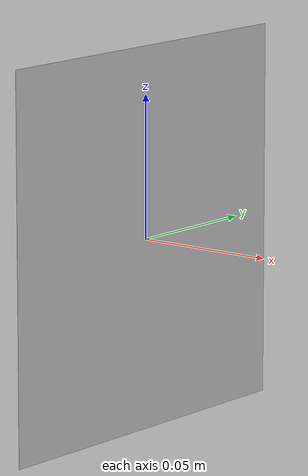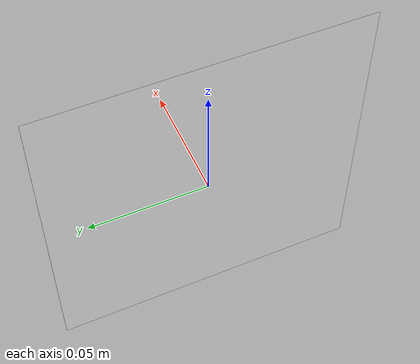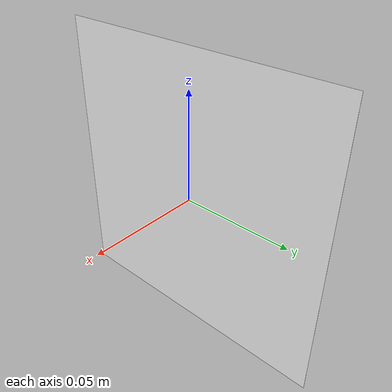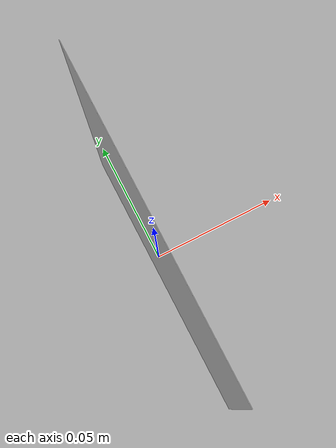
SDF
<?xml version="1.0"?>
<sdf version="1.8">
  <model name="aruco_marker_3">
    <static>true</static>
    <link name="link">
      <visual name="visual">
        <geometry><plane><normal>1 0 0</normal><size>0.13333333333333333 0.13333333333333333</size></plane></geometry>
        <material>
          <ambient>1 1 1 1</ambient><diffuse>1 1 1 1</diffuse><specular>0 0 0 1</specular>
          <pbr><metal>
            <albedo_map>model://aruco_marker_3/materials/textures/aruco_marker_3.png</albedo_map>
            <roughness>1.0</roughness><metalness>0.0</metalness>
          </metal></pbr>
        </material>
      </visual>
    </link>
  </model>
</sdf>
